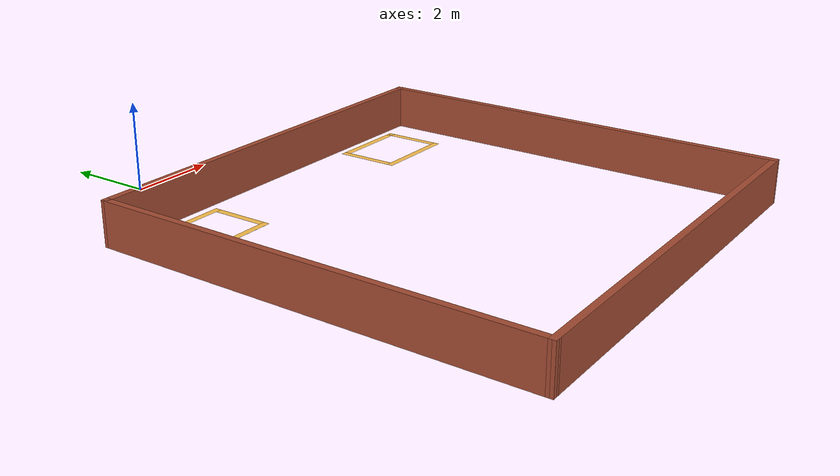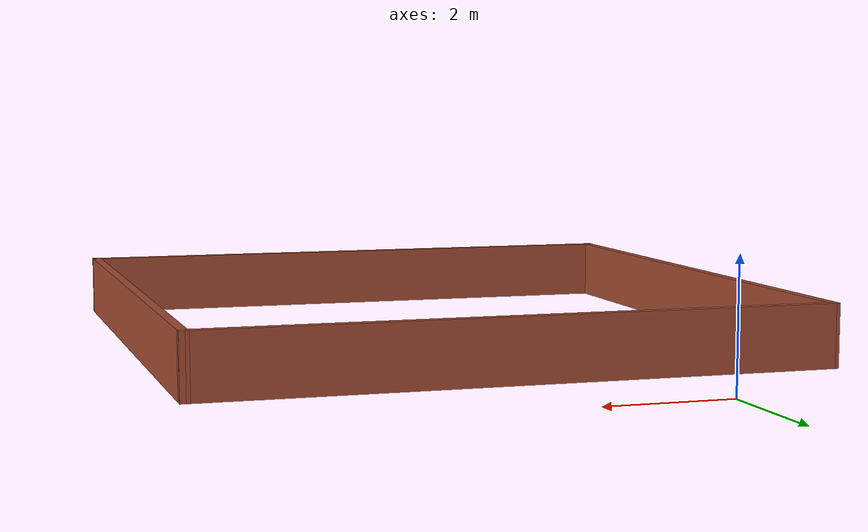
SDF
<?xml version='1.0'?>
<sdf version='1.7'>
  <model name='parking_world'>
    <pose>2.314 -5.93769 0 0 -0 0</pose>
    <link name='Wall_0'>
      <collision name='Wall_0_Collision'>
        <geometry>
          <box>
            <size>10 0.15 1</size>
          </box>
        </geometry>
        <pose>0 0 0.5 0 -0 0</pose>
      </collision>
      <visual name='Wall_0_Visual'>
        <pose>0 0 0.5 0 -0 0</pose>
        <geometry>
          <box>
            <size>10 0.15 1</size>
          </box>
        </geometry>
        <material>
          <script>
            <uri>file://media/materials/scripts/gazebo.material</uri>
            <name>Gazebo/Bricks</name>
          </script>
          <ambient>1 1 1 1</ambient>
        </material>
        <meta>
          <layer>0</layer>
        </meta>
      </visual>
      <pose>0.031 3.98769 0 0 -0 0</pose>
    </link>
    <link name='Wall_10'>
      <collision name='Wall_10_Collision'>
        <geometry>
          <box>
            <size>1.513 0.15 0</size>
          </box>
        </geometry>
        <pose>0 0 0.0005 0 -0 0</pose>
      </collision>
      <visual name='Wall_10_Visual'>
        <pose>0 0 0.0005 0 -0 0</pose>
        <geometry>
          <box>
            <size>1.513 0.15 0</size>
          </box>
        </geometry>
        <material>
          <script>
            <uri>file://media/materials/scripts/gazebo.material</uri>
            <name>Gazebo/Grey</name>
          </script>
          <ambient>1 0.764706 0.305882 1</ambient>
        </material>
        <meta>
          <layer>0</layer>
        </meta>
      </visual>
      <pose>-4.113 2.99019 0 0 -0 1.5708</pose>
    </link>
    <link name='Wall_12'>
      <collision name='Wall_12_Collision'>
        <geometry>
          <box>
            <size>2 0.15 0</size>
          </box>
        </geometry>
        <pose>0 0 0.0005 0 -0 0</pose>
      </collision>
      <visual name='Wall_12_Visual'>
        <pose>0 0 0.0005 0 -0 0</pose>
        <geometry>
          <box>
            <size>2 0.15 0</size>
          </box>
        </geometry>
        <material>
          <script>
            <uri>file://media/materials/scripts/gazebo.material</uri>
            <name>Gazebo/Grey</name>
          </script>
          <ambient>1 0.764706 0.305882 1</ambient>
        </material>
        <meta>
          <layer>0</layer>
        </meta>
      </visual>
      <pose>3.206 3.68969 0 0 -0 3.14159</pose>
    </link>
    <link name='Wall_13'>
      <collision name='Wall_13_Collision'>
        <geometry>
          <box>
            <size>1.5 0.15 0</size>
          </box>
        </geometry>
        <pose>0 0 0.0005 0 -0 0</pose>
      </collision>
      <visual name='Wall_13_Visual'>
        <pose>0 0 0.0005 0 -0 0</pose>
        <geometry>
          <box>
            <size>1.5 0.15 0</size>
          </box>
        </geometry>
        <material>
          <script>
            <uri>file://media/materials/scripts/gazebo.material</uri>
            <name>Gazebo/Grey</name>
          </script>
          <ambient>1 0.764706 0.305882 1</ambient>
        </material>
        <meta>
          <layer>0</layer>
        </meta>
      </visual>
      <pose>2.281 3.01469 0 0 -0 -1.5708</pose>
    </link>
    <link name='Wall_14'>
      <collision name='Wall_14_Collision'>
        <geometry>
          <box>
            <size>2 0.15 0</size>
          </box>
        </geometry>
        <pose>0 0 0.0005 0 -0 0</pose>
      </collision>
      <visual name='Wall_14_Visual'>
        <pose>0 0 0.0005 0 -0 0</pose>
        <geometry>
          <box>
            <size>2 0.15 0</size>
          </box>
        </geometry>
        <material>
          <script>
            <uri>file://media/materials/scripts/gazebo.material</uri>
            <name>Gazebo/Grey</name>
          </script>
          <ambient>1 0.764706 0.305882 1</ambient>
        </material>
        <meta>
          <layer>0</layer>
        </meta>
      </visual>
      <pose>3.206 2.33969 0 0 -0 0</pose>
    </link>
    <link name='Wall_15'>
      <collision name='Wall_15_Collision'>
        <geometry>
          <box>
            <size>1.5 0.15 0</size>
          </box>
        </geometry>
        <pose>0 0 0.0005 0 -0 0</pose>
      </collision>
      <visual name='Wall_15_Visual'>
        <pose>0 0 0.0005 0 -0 0</pose>
        <geometry>
          <box>
            <size>1.5 0.15 0</size>
          </box>
        </geometry>
        <material>
          <script>
            <uri>file://media/materials/scripts/gazebo.material</uri>
            <name>Gazebo/Grey</name>
          </script>
          <ambient>1 0.764706 0.305882 1</ambient>
        </material>
        <meta>
          <layer>0</layer>
        </meta>
      </visual>
      <pose>4.131 3.01469 0 0 -0 1.5708</pose>
    </link>
    <link name='Wall_2'>
      <collision name='Wall_2_Collision'>
        <geometry>
          <box>
            <size>10 0.15 1</size>
          </box>
        </geometry>
        <pose>0 0 0.5 0 -0 0</pose>
      </collision>
      <visual name='Wall_2_Visual'>
        <pose>0 0 0.5 0 -0 0</pose>
        <geometry>
          <box>
            <size>10 0.15 1</size>
          </box>
        </geometry>
        <material>
          <script>
            <uri>file://media/materials/scripts/gazebo.material</uri>
            <name>Gazebo/Bricks</name>
          </script>
          <ambient>1 1 1 1</ambient>
        </material>
        <meta>
          <layer>0</layer>
        </meta>
      </visual>
      <pose>4.925 -0.937314 0 0 -0 -1.57709</pose>
    </link>
    <link name='Wall_4'>
      <collision name='Wall_4_Collision'>
        <geometry>
          <box>
            <size>10 0.15 1</size>
          </box>
        </geometry>
        <pose>0 0 0.5 0 -0 0</pose>
      </collision>
      <visual name='Wall_4_Visual'>
        <pose>0 0 0.5 0 -0 0</pose>
        <geometry>
          <box>
            <size>10 0.15 1</size>
          </box>
        </geometry>
        <material>
          <script>
            <uri>file://media/materials/scripts/gazebo.material</uri>
            <name>Gazebo/Bricks</name>
          </script>
          <ambient>1 1 1 1</ambient>
        </material>
        <meta>
          <layer>0</layer>
        </meta>
      </visual>
      <pose>-0.031 -5.86231 0 0 -0 3.14159</pose>
    </link>
    <link name='Wall_5'>
      <collision name='Wall_5_Collision'>
        <geometry>
          <box>
            <size>10 0.15 1</size>
          </box>
        </geometry>
        <pose>0 0 0.5 0 -0 0</pose>
      </collision>
      <visual name='Wall_5_Visual'>
        <pose>0 0 0.5 0 -0 0</pose>
        <geometry>
          <box>
            <size>10 0.15 1</size>
          </box>
        </geometry>
        <material>
          <script>
            <uri>file://media/materials/scripts/gazebo.material</uri>
            <name>Gazebo/Bricks</name>
          </script>
          <ambient>1 1 1 1</ambient>
        </material>
        <meta>
          <layer>0</layer>
        </meta>
      </visual>
      <pose>-4.925 -0.937314 0 0 -0 1.5645</pose>
    </link>
    <link name='Wall_7'>
      <collision name='Wall_7_Collision'>
        <geometry>
          <box>
            <size>2 0.15 0</size>
          </box>
        </geometry>
        <pose>0 0 0.0005 0 -0 0</pose>
      </collision>
      <visual name='Wall_7_Visual'>
        <pose>0 0 0.0005 0 -0 0</pose>
        <geometry>
          <box>
            <size>2 0.15 0</size>
          </box>
        </geometry>
        <material>
          <script>
            <uri>file://media/materials/scripts/gazebo.material</uri>
            <name>Gazebo/Grey</name>
          </script>
          <ambient>1 0.764706 0.305882 1</ambient>
        </material>
        <meta>
          <layer>0</layer>
        </meta>
      </visual>
      <pose>-3.188 3.67169 0 0 -0 0</pose>
    </link>
    <link name='Wall_8'>
      <collision name='Wall_8_Collision'>
        <geometry>
          <box>
            <size>1.513 0.15 0</size>
          </box>
        </geometry>
        <pose>0 0 0.0005 0 -0 0</pose>
      </collision>
      <visual name='Wall_8_Visual'>
        <pose>0 0 0.0005 0 -0 0</pose>
        <geometry>
          <box>
            <size>1.513 0.15 0</size>
          </box>
        </geometry>
        <material>
          <script>
            <uri>file://media/materials/scripts/gazebo.material</uri>
            <name>Gazebo/Grey</name>
          </script>
          <ambient>1 0.764706 0.305882 1</ambient>
        </material>
        <meta>
          <layer>0</layer>
        </meta>
      </visual>
      <pose>-2.263 2.99019 0 0 -0 -1.5708</pose>
    </link>
    <link name='Wall_9'>
      <collision name='Wall_9_Collision'>
        <geometry>
          <box>
            <size>2 0.15 0.001</size>
          </box>
        </geometry>
        <pose>0 0 0.0005 0 -0 0</pose>
      </collision>
      <visual name='Wall_9_Visual'>
        <pose>0 0 0.0005 0 -0 0</pose>
        <geometry>
          <box>
            <size>2 0.15 0.001</size>
          </box>
        </geometry>
        <material>
          <script>
            <uri>file://media/materials/scripts/gazebo.material</uri>
            <name>Gazebo/Grey</name>
          </script>
          <ambient>1 0.764706 0.305882 1</ambient>
        </material>
        <meta>
          <layer>0</layer>
        </meta>
      </visual>
      <pose>-3.188 2.30869 0 0 -0 3.14159</pose>
    </link>
    <static>1</static>
  </model>
</sdf>
